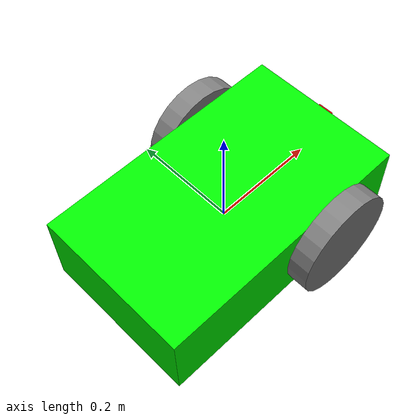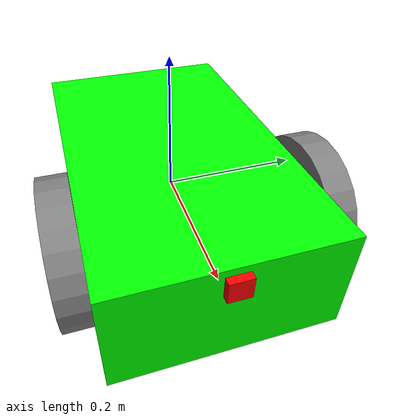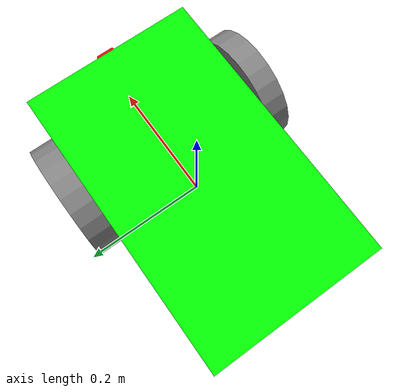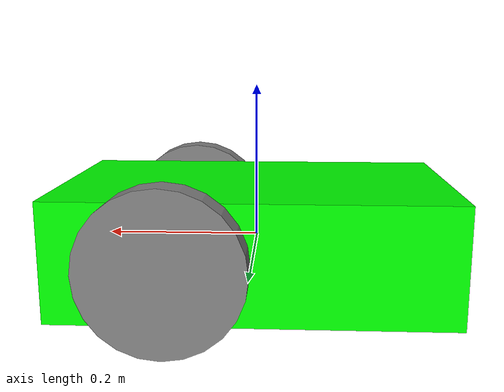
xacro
<?xml version="1.0"?>
<robot name="robot2" xmlns:xacro="http://www.ros.org/wiki/xacro">

    <material name="blue"><color rgba="0.0 0.0 0.8 1.0"/></material>
    <material name="green"><color rgba="0.0 1.0 0.0 1.0"/></material>
    <material name="gray"><color rgba="0.5 0.5 0.5 1.0"/></material>
    <material name="black"><color rgba="0.0 0.0 0.0 1.0"/></material>

    <link name="robot2_base_link">
        <visual>
            <geometry><box size="0.5 0.3 0.15"/></geometry>
            <material name="green"/>
        </visual>
        <collision>
            <geometry><box size="0.5 0.3 0.15"/></geometry>
        </collision>
        <inertial>
            <mass value="5.0"/>
            <inertia ixx="0.1" ixy="0.0" ixz="0.0" iyy="0.1" iyz="0.0" izz="0.1"/>
        </inertial>
    </link>

    <link name="robot2_left_wheel">
        <visual>
            <geometry><cylinder length="0.04" radius="0.1"/></geometry>
            <material name="gray"/>
        </visual>
        <collision>
            <geometry><cylinder length="0.04" radius="0.1"/></geometry>
        </collision>
        <inertial>
            <mass value="0.5"/>
            <inertia ixx="0.01" ixy="0.0" ixz="0.0" iyy="0.01" iyz="0.0" izz="0.01"/>
        </inertial>
    </link>

    <joint name="robot2_left_wheel_joint" type="continuous">
        <parent link="robot2_base_link"/>
        <child link="robot2_left_wheel"/>
        <origin xyz="0.1 0.17 0" rpy="-1.5708 0 0"/>
        <axis xyz="0 0 1"/>
    </joint>

    <link name="robot2_right_wheel">
        <visual>
            <geometry><cylinder length="0.04" radius="0.1"/></geometry>
            <material name="gray"/>
        </visual>
        <collision>
            <geometry><cylinder length="0.04" radius="0.1"/></geometry>
        </collision>
        <inertial>
            <mass value="0.5"/>
            <inertia ixx="0.01" ixy="0.0" ixz="0.0" iyy="0.01" iyz="0.0" izz="0.01"/>
        </inertial>
    </link>

    <joint name="robot2_right_wheel_joint" type="continuous">
        <parent link="robot2_base_link"/>
        <child link="robot2_right_wheel"/>
        <origin xyz="0.1 -0.17 0" rpy="-1.5708 0 0"/>
        <axis xyz="0 0 1"/>
    </joint>

    <link name="robot2_caster_wheel">
        <visual>
            <geometry><sphere radius="0.05"/></geometry>
            <material name="black"/>
        </visual>
        <collision>
            <geometry><sphere radius="0.05"/></geometry>
        </collision>
        <inertial>
            <mass value="0.2"/>
            <inertia ixx="0.001" ixy="0.0" ixz="0.0" iyy="0.001" iyz="0.0" izz="0.001"/>
        </inertial>
    </link>

    <joint name="robot2_caster_joint" type="fixed">
        <parent link="robot2_base_link"/>
        <child link="robot2_caster_wheel"/>
        <origin xyz="-0.2 0 -0.05" rpy="0 0 0"/>
    </joint>

    <xacro:include filename="depth_camera.xacro"/>

    <gazebo>
        <plugin
            filename="gz-sim-diff-drive-system"
            name="gz::sim::systems::DiffDrive">
            <left_joint>robot2_left_wheel_joint</left_joint>
            <right_joint>robot2_right_wheel_joint</right_joint>

            <wheel_separation>0.34</wheel_separation> <wheel_radius>0.1</wheel_radius>
            <topic>/model/robot2/cmd_vel</topic>
            <odom_topic>/model/robot2/odometry</odom_topic>
            <tf_topic>/model/robot2/tf</tf_topic>
            <frame_id>/robot2/odom</frame_id>
            <child_frame_id>robot2_base_link</child_frame_id>
        </plugin>
    </gazebo>
    <gazebo reference="robot2_caster_wheel">
        <mu1 value="0.001"/>
        <mu2 value="0.001"/>
    </gazebo>

</robot>

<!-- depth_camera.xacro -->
<robot xmlns:xacro="http://www.ros.org/wiki/xacro">

    <material name="red"><color rgba="1.0 0.0 0.0 1.0"/></material>

    <joint name="robot2_camera_joint" type="fixed">
        <parent link="robot2_base_link"/>
        <child link="robot2_camera_link"/>
        <origin xyz="0.255 0 0.05" rpy="0 0 0"/>
    </joint>

    <link name="robot2_camera_link">
        <visual>
            <geometry>
                <box size="0.010 0.03 0.03"/>
            </geometry>
            <material name="red"/>
        </visual>
    </link>

    <joint name="robot2_camera_optical_joint" type="fixed">
        <parent link="robot2_camera_link"/>
        <child link="robot2_camera_link_optical"/>
        <origin xyz="0 0 0" rpy="${-pi/2} 0 ${-pi/2}"/>
    </joint>

    <link name="robot2_camera_link_optical"></link>

<gazebo reference="robot2_camera_link">
    <sensor name="camera" type="rgbd">
        <gz_frame_id>robot2_camera_link_optical</gz_frame_id>
        <topic>/robot2/camera/image_raw</topic>
        <update_rate>10</update_rate>
        <visualize>true</visualize>
        <camera>
            <horizontal_fov>1.5</horizontal_fov>
            <image>
                <format>R8G8B8</format>
                <width>640</width>
                <height>480</height>
            </image>
            <clip>
                <near>0.05</near>
                <far>15.0</far>
            </clip>
        </camera>
        </sensor>
</gazebo>
</robot>
